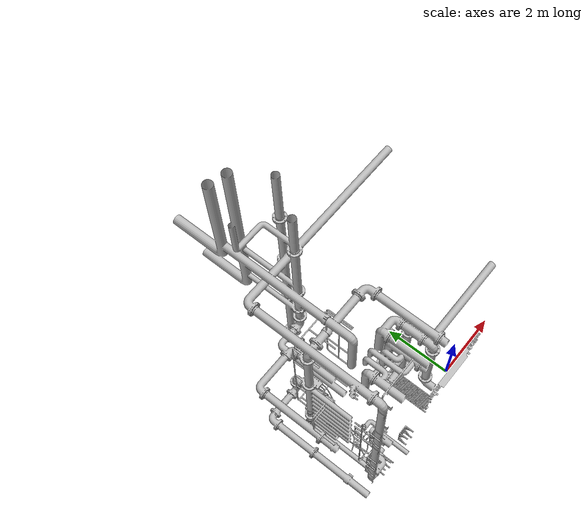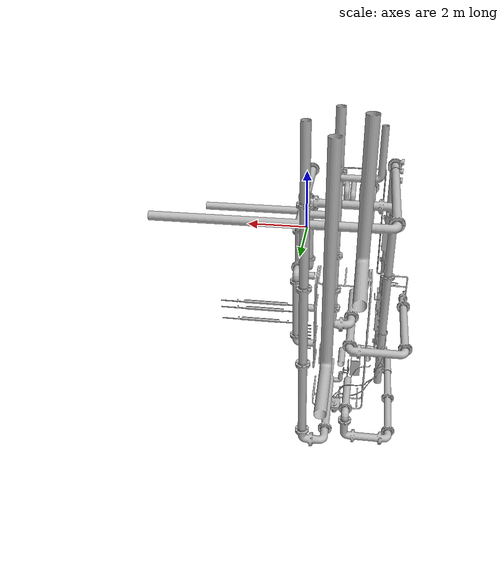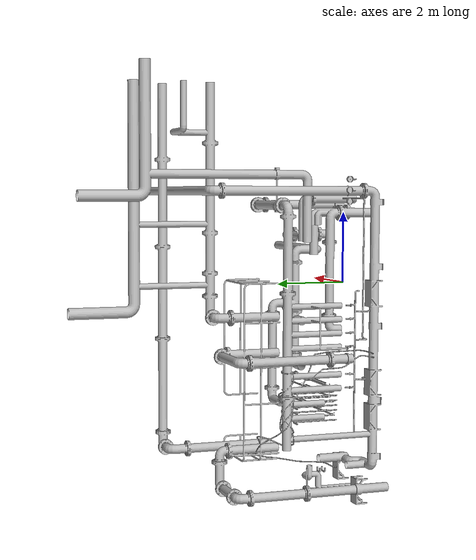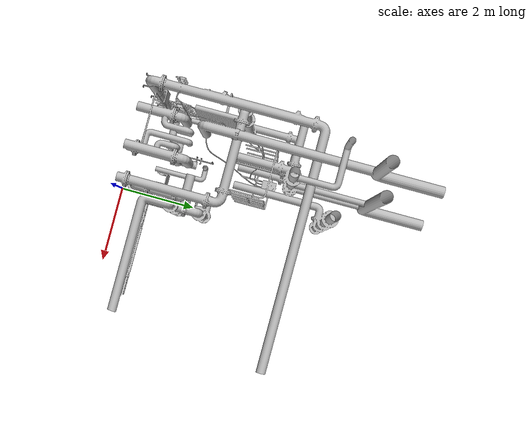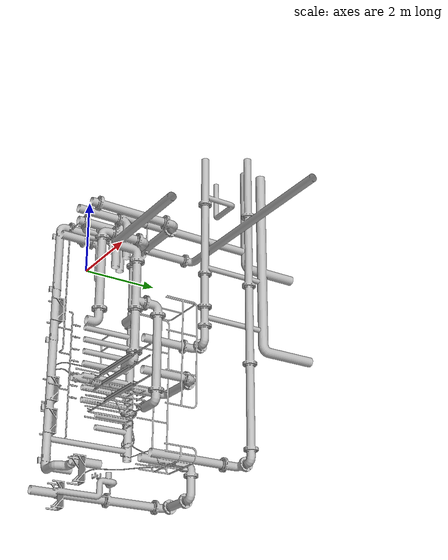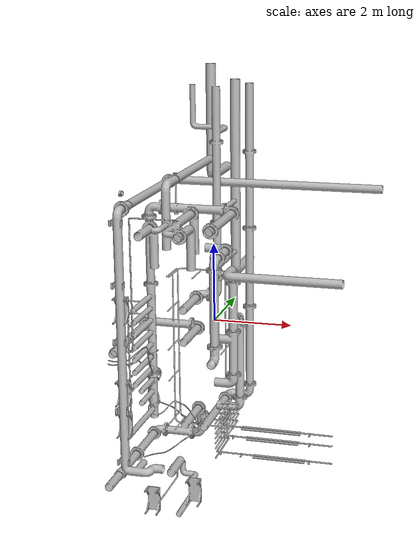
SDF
<?xml version="1.0" ?>
<sdf version="1.5">
<model name="gas_tank">
  <static>false</static>
  <link name="gas_tank_link">

  <inertial>
    <inertia>
      <ixx>.1</ixx>
      <ixy>0</ixy>
      <ixz>0</ixz>
      <iyy>5</iyy>
      <iyz>0</iyz>
      <izz>.1</izz>
    </inertia>
    <mass>5</mass>
  </inertial>

  <visual name="gas_tank">
    <pose>0 0 0 1.57 0 3.14</pose>
    <geometry>
      <mesh><uri>model://gas_tank/meshes/gas_tank.obj</uri><scale>1 1 1</scale></mesh>
    </geometry>
  </visual>

  <collision name="gas_tank">
    <pose>0 0 0 1.57 0 0</pose>
    <geometry>
      <mesh><uri>model://gas_tank/meshes/gas_tank.obj</uri><scale>1 1 1</scale></mesh>
    </geometry>
  </collision>

  </link>
</model>
</sdf>
